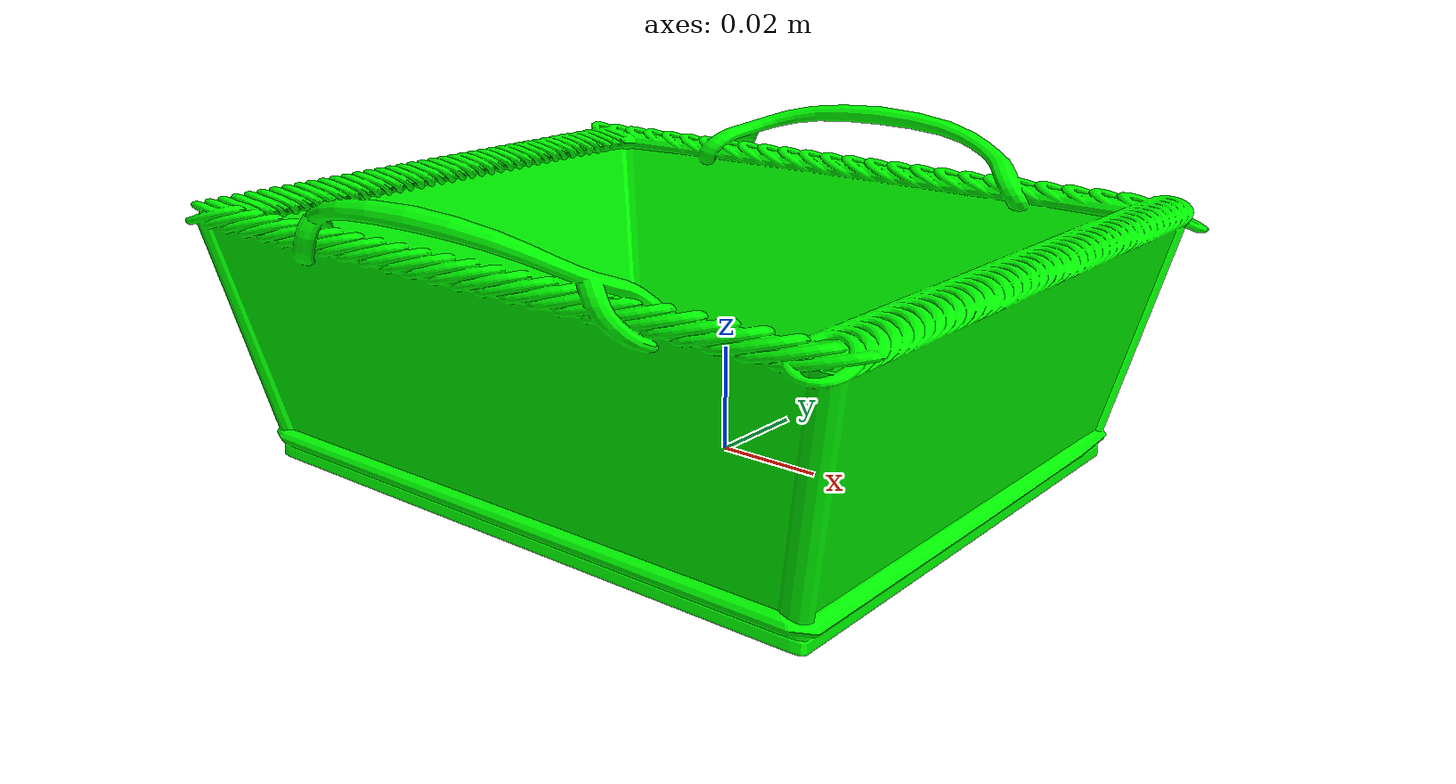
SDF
<?xml version="1.0"?>
<sdf version="1.6">
  <model name="basket_green">
    <static>true</static>
    <link name="link">
      <collision name="collision">
        <geometry>
          <mesh>
            <uri>model://basket_green/meshes/basket.obj</uri>
            <scale>0.003 0.0015 0.0015</scale>
          </mesh>
        </geometry>
      </collision>
      <visual name="visual">
        <geometry>
          <mesh>
            <uri>model://basket_green/meshes/basket.obj</uri>
            <scale>0.003 0.0015 0.0015</scale>
          </mesh>
        </geometry>
        <material>
          <ambient>0.0 1.0 0.0 1</ambient>
          <diffuse>0.0 1.0 0.0 1</diffuse>
          <specular>0.2 0.2 0.2 1</specular>
        </material>
      </visual>
    </link>
  </model>
</sdf>
